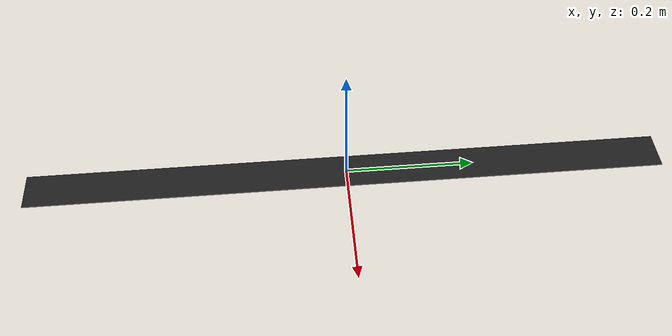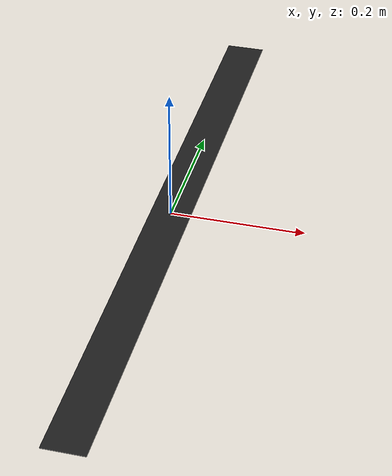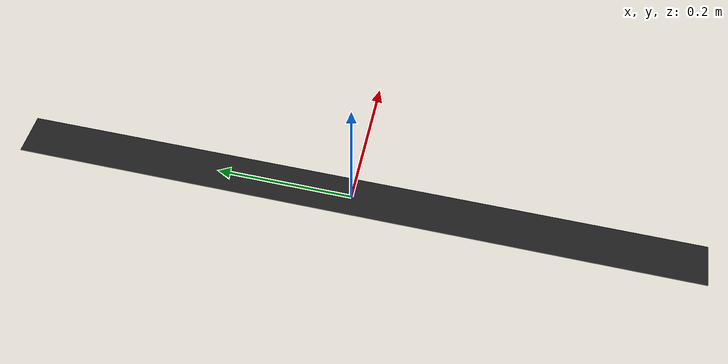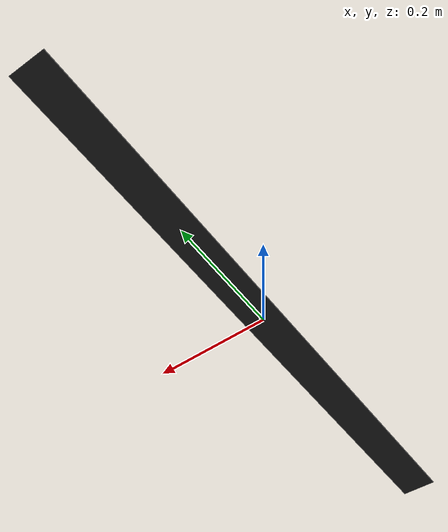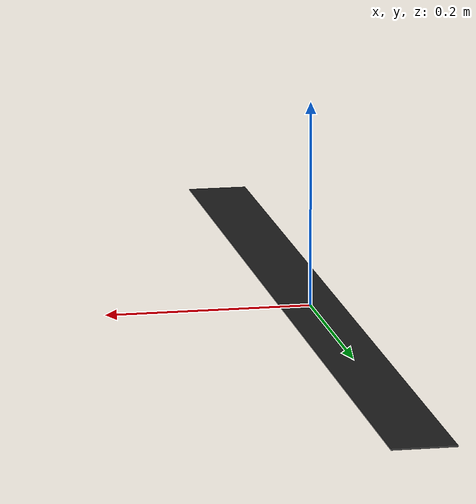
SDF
<?xml version="1.0" ?>

<sdf version="1.5">
    <!-- http://sdformat.org/spec?elem=sensor&ver=1.5 -->
    <model name='right_segment'>
        <link name='right_link'>
        <inertial>
            <mass>1</mass>
            <inertia>
            <ixx>0.166667</ixx>
            <ixy>0</ixy>
            <ixz>0</ixz>
            <iyy>0.166667</iyy>
            <iyz>0</iyz>
            <izz>0.166667</izz>
            </inertia>
            <pose>0 0 0 0 -0 0</pose>
        </inertial>
        <self_collide>0</self_collide>
        <enable_wind>0</enable_wind>
        <kinematic>0</kinematic>
        <pose>0 0 0 0 -0 0</pose>
        <gravity>1</gravity>
        <visual name='visual'>
            <geometry>
            <box>
                <size>0.06 1 0.000937</size>
            </box>
            </geometry>
            <material>
            <script>
                <name>Gazebo/Black</name>
                <uri>file://media/materials/scripts/gazebo.material</uri>
            </script>
            <shader type='pixel'>
                <normal_map>__default__</normal_map>
            </shader>
            <ambient>0 0 0 1</ambient>
            <diffuse>0 0 0 1</diffuse>
            <specular>0.1 0.1 0.1 1</specular>
            <emissive>0 0 0 1</emissive>
            </material>
            <pose>0 0 0 0 -0 0</pose>
            <transparency>0</transparency>
            <cast_shadows>1</cast_shadows>
        </visual>
        <collision name='collision'>
            <laser_retro>0</laser_retro>
            <max_contacts>10</max_contacts>
            <pose>0 0 0 0 -0 0</pose>
            <geometry>
            <box>
                <size>0.06 1 0.000937</size>
            </box>
            </geometry>
            <surface>
            <friction>
                <ode>
                <mu>1</mu>
                <mu2>1</mu2>
                <fdir1>0 0 0</fdir1>
                <slip1>0</slip1>
                <slip2>0</slip2>
                </ode>
                <torsional>
                <coefficient>1</coefficient>
                <patch_radius>0</patch_radius>
                <surface_radius>0</surface_radius>
                <use_patch_radius>1</use_patch_radius>
                <ode>
                    <slip>0</slip>
                </ode>
                </torsional>
            </friction>
            <bounce>
                <restitution_coefficient>0</restitution_coefficient>
                <threshold>1e+06</threshold>
            </bounce>
            <contact>
                <collide_without_contact>0</collide_without_contact>
                <collide_without_contact_bitmask>1</collide_without_contact_bitmask>
                <collide_bitmask>1</collide_bitmask>
                <ode>
                <soft_cfm>0</soft_cfm>
                <soft_erp>0.2</soft_erp>
                <kp>1e+13</kp>
                <kd>1</kd>
                <max_vel>0.01</max_vel>
                <min_depth>0</min_depth>
                </ode>
                <bullet>
                <split_impulse>1</split_impulse>
                <split_impulse_penetration_threshold>-0.01</split_impulse_penetration_threshold>
                <soft_cfm>0</soft_cfm>
                <soft_erp>0.2</soft_erp>
                <kp>1e+13</kp>
                <kd>1</kd>
                </bullet>
            </contact>
            </surface>
        </collision>
        </link>
        <static>1</static>
        <allow_auto_disable>1</allow_auto_disable>
        <pose>0 0 0.000468 0 -0 1.4e-05</pose>
    </model>
</sdf>
